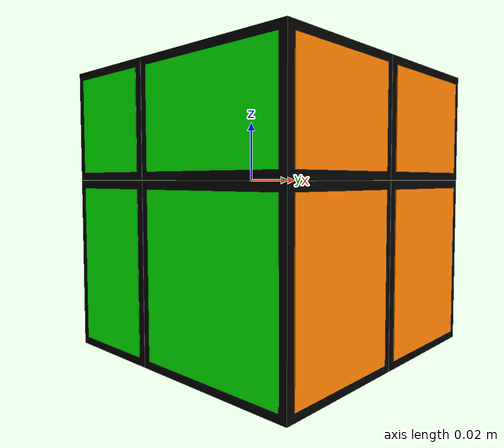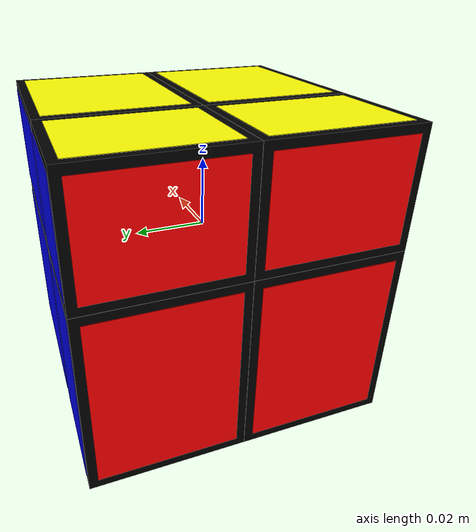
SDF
<?xml version="1.0" ?>
<sdf version="1.7">
	<model name="mirror_cube_2x2">
		<link name="center"/>
		<link name="cubie_0_0_0">
			<pose>-0.01755 -0.02255 -0.02755 0.0 0.0 0.0</pose>
			<inertial>
				<mass>0.033783749999999994</mass>
				<inertia>
					<ixx>1.4217328124999998e-05</ixx>
					<ixy>0.0</ixy>
					<ixz>0.0</ixz>
					<iyy>1.1965078124999998e-05</iyy>
					<iyz>0.0</iyz>
					<izz>9.149765624999997e-06</izz>
				</inertia>
			</inertial>
			<collision name="collision">
				<geometry>
					<box>
						<size>0.034999999999999996 0.045 0.055</size>
					</box>
				</geometry>
				<surface>
					<friction>
						<ode>
							<mu>0.6</mu>
							<mu2>0.6</mu2>
						</ode>
					</friction>
				</surface>
			</collision>
			<visual name="black">
				<geometry>
					<box>
						<size>0.034999999999999996 0.045 0.055</size>
					</box>
				</geometry>
				<material>
					<diffuse>0 0 0 1</diffuse>
				</material>
			</visual>
			<visual name="red">
				<pose>-0.017499999999999998 0.0 0.0 0.0 0.0 0.0</pose>
				<geometry>
					<box>
						<size>0.0003 0.04 0.05</size>
					</box>
				</geometry>
				<material>
					<diffuse>1 0 0 1</diffuse>
				</material>
			</visual>
			<visual name="green">
				<pose>0.0 -0.0225 0.0 0.0 0.0 0.0</pose>
				<geometry>
					<box>
						<size>0.03 0.0004 0.05</size>
					</box>
				</geometry>
				<material>
					<diffuse>0 1 0 1</diffuse>
				</material>
			</visual>
			<visual name="white">
				<pose>0.0 0.0 -0.0275 0.0 0.0 0.0</pose>
				<geometry>
					<box>
						<size>0.03 0.04 0.0005</size>
					</box>
				</geometry>
				<material>
					<diffuse>1 1 1 1</diffuse>
				</material>
			</visual>
		</link>
		<joint name="ball_0_0_0" type="ball">
			<pose>0.01755 0.02255 0.02755 -0.0 -0.0 -0.0</pose>
			<parent>center</parent>
			<child>cubie_0_0_0</child>
			<axis>
				<dynamics>
					<damping>0.1</damping>
				</dynamics>
				<limit>
					<effort>0</effort>
				</limit>
			</axis>
		</joint>
		<link name="cubie_0_0_1">
			<pose>-0.01755 -0.02255 0.01755 0.0 0.0 0.0</pose>
			<inertial>
				<mass>0.021498749999999994</mass>
				<inertia>
					<ixx>5.8225781249999976e-06</ixx>
					<ixy>0.0</ixy>
					<ixz>0.0</ixz>
					<iyy>4.389328124999998e-06</iyy>
					<iyz>0.0</iyz>
					<izz>5.8225781249999976e-06</izz>
				</inertia>
			</inertial>
			<collision name="collision">
				<geometry>
					<box>
						<size>0.034999999999999996 0.045 0.034999999999999996</size>
					</box>
				</geometry>
				<surface>
					<friction>
						<ode>
							<mu>0.6</mu>
							<mu2>0.6</mu2>
						</ode>
					</friction>
				</surface>
			</collision>
			<visual name="black">
				<geometry>
					<box>
						<size>0.034999999999999996 0.045 0.034999999999999996</size>
					</box>
				</geometry>
				<material>
					<diffuse>0 0 0 1</diffuse>
				</material>
			</visual>
			<visual name="red">
				<pose>-0.017499999999999998 0.0 0.0 0.0 0.0 0.0</pose>
				<geometry>
					<box>
						<size>0.0003 0.04 0.03</size>
					</box>
				</geometry>
				<material>
					<diffuse>1 0 0 1</diffuse>
				</material>
			</visual>
			<visual name="green">
				<pose>0.0 -0.0225 0.0 0.0 0.0 0.0</pose>
				<geometry>
					<box>
						<size>0.03 0.0004 0.03</size>
					</box>
				</geometry>
				<material>
					<diffuse>0 1 0 1</diffuse>
				</material>
			</visual>
			<visual name="yellow">
				<pose>0.0 0.0 0.017499999999999998 0.0 0.0 0.0</pose>
				<geometry>
					<box>
						<size>0.03 0.04 0.0003</size>
					</box>
				</geometry>
				<material>
					<diffuse>1 1 0 1</diffuse>
				</material>
			</visual>
		</link>
		<joint name="ball_0_0_1" type="ball">
			<pose>0.01755 0.02255 -0.01755 -0.0 -0.0 -0.0</pose>
			<parent>center</parent>
			<child>cubie_0_0_1</child>
			<axis>
				<dynamics>
					<damping>0.1</damping>
				</dynamics>
				<limit>
					<effort>0</effort>
				</limit>
			</axis>
		</joint>
		<link name="cubie_0_1_0">
			<pose>-0.01755 0.02255 -0.02755 0.0 0.0 0.0</pose>
			<inertial>
				<mass>0.033783749999999994</mass>
				<inertia>
					<ixx>1.4217328124999998e-05</ixx>
					<ixy>0.0</ixy>
					<ixz>0.0</ixz>
					<iyy>1.1965078124999998e-05</iyy>
					<iyz>0.0</iyz>
					<izz>9.149765624999997e-06</izz>
				</inertia>
			</inertial>
			<collision name="collision">
				<geometry>
					<box>
						<size>0.034999999999999996 0.045 0.055</size>
					</box>
				</geometry>
				<surface>
					<friction>
						<ode>
							<mu>0.6</mu>
							<mu2>0.6</mu2>
						</ode>
					</friction>
				</surface>
			</collision>
			<visual name="black">
				<geometry>
					<box>
						<size>0.034999999999999996 0.045 0.055</size>
					</box>
				</geometry>
				<material>
					<diffuse>0 0 0 1</diffuse>
				</material>
			</visual>
			<visual name="red">
				<pose>-0.017499999999999998 0.0 0.0 0.0 0.0 0.0</pose>
				<geometry>
					<box>
						<size>0.0003 0.04 0.05</size>
					</box>
				</geometry>
				<material>
					<diffuse>1 0 0 1</diffuse>
				</material>
			</visual>
			<visual name="blue">
				<pose>0.0 0.0225 0.0 0.0 0.0 0.0</pose>
				<geometry>
					<box>
						<size>0.03 0.0004 0.05</size>
					</box>
				</geometry>
				<material>
					<diffuse>0 0 1 1</diffuse>
				</material>
			</visual>
			<visual name="white">
				<pose>0.0 0.0 -0.0275 0.0 0.0 0.0</pose>
				<geometry>
					<box>
						<size>0.03 0.04 0.0005</size>
					</box>
				</geometry>
				<material>
					<diffuse>1 1 1 1</diffuse>
				</material>
			</visual>
		</link>
		<joint name="ball_0_1_0" type="ball">
			<pose>0.01755 -0.02255 0.02755 -0.0 -0.0 -0.0</pose>
			<parent>center</parent>
			<child>cubie_0_1_0</child>
			<axis>
				<dynamics>
					<damping>0.1</damping>
				</dynamics>
				<limit>
					<effort>0</effort>
				</limit>
			</axis>
		</joint>
		<link name="cubie_0_1_1">
			<pose>-0.01755 0.02255 0.01755 0.0 0.0 0.0</pose>
			<inertial>
				<mass>0.021498749999999994</mass>
				<inertia>
					<ixx>5.8225781249999976e-06</ixx>
					<ixy>0.0</ixy>
					<ixz>0.0</ixz>
					<iyy>4.389328124999998e-06</iyy>
					<iyz>0.0</iyz>
					<izz>5.8225781249999976e-06</izz>
				</inertia>
			</inertial>
			<collision name="collision">
				<geometry>
					<box>
						<size>0.034999999999999996 0.045 0.034999999999999996</size>
					</box>
				</geometry>
				<surface>
					<friction>
						<ode>
							<mu>0.6</mu>
							<mu2>0.6</mu2>
						</ode>
					</friction>
				</surface>
			</collision>
			<visual name="black">
				<geometry>
					<box>
						<size>0.034999999999999996 0.045 0.034999999999999996</size>
					</box>
				</geometry>
				<material>
					<diffuse>0 0 0 1</diffuse>
				</material>
			</visual>
			<visual name="red">
				<pose>-0.017499999999999998 0.0 0.0 0.0 0.0 0.0</pose>
				<geometry>
					<box>
						<size>0.0003 0.04 0.03</size>
					</box>
				</geometry>
				<material>
					<diffuse>1 0 0 1</diffuse>
				</material>
			</visual>
			<visual name="blue">
				<pose>0.0 0.0225 0.0 0.0 0.0 0.0</pose>
				<geometry>
					<box>
						<size>0.03 0.0004 0.03</size>
					</box>
				</geometry>
				<material>
					<diffuse>0 0 1 1</diffuse>
				</material>
			</visual>
			<visual name="yellow">
				<pose>0.0 0.0 0.017499999999999998 0.0 0.0 0.0</pose>
				<geometry>
					<box>
						<size>0.03 0.04 0.0003</size>
					</box>
				</geometry>
				<material>
					<diffuse>1 1 0 1</diffuse>
				</material>
			</visual>
		</link>
		<joint name="ball_0_1_1" type="ball">
			<pose>0.01755 -0.02255 -0.01755 -0.0 -0.0 -0.0</pose>
			<parent>center</parent>
			<child>cubie_0_1_1</child>
			<axis>
				<dynamics>
					<damping>0.1</damping>
				</dynamics>
				<limit>
					<effort>0</effort>
				</limit>
			</axis>
		</joint>
		<link name="cubie_1_0_0">
			<pose>0.02755 -0.02255 -0.02755 0.0 0.0 0.0</pose>
			<inertial>
				<mass>0.05308875</mass>
				<inertia>
					<ixx>2.2341515624999998e-05</ixx>
					<ixy>0.0</ixy>
					<ixz>0.0</ixz>
					<iyy>2.6765578125e-05</iyy>
					<iyz>0.0</iyz>
					<izz>2.2341515624999998e-05</izz>
				</inertia>
			</inertial>
			<collision name="collision">
				<geometry>
					<box>
						<size>0.055 0.045 0.055</size>
					</box>
				</geometry>
				<surface>
					<friction>
						<ode>
							<mu>0.6</mu>
							<mu2>0.6</mu2>
						</ode>
					</friction>
				</surface>
			</collision>
			<visual name="black">
				<geometry>
					<box>
						<size>0.055 0.045 0.055</size>
					</box>
				</geometry>
				<material>
					<diffuse>0 0 0 1</diffuse>
				</material>
			</visual>
			<visual name="orange">
				<pose>0.0275 0.0 0.0 0.0 0.0 0.0</pose>
				<geometry>
					<box>
						<size>0.0005 0.04 0.05</size>
					</box>
				</geometry>
				<material>
					<diffuse>1.0 0.5 0.0 1.0</diffuse>
				</material>
			</visual>
			<visual name="green">
				<pose>0.0 -0.0225 0.0 0.0 0.0 0.0</pose>
				<geometry>
					<box>
						<size>0.05 0.0004 0.05</size>
					</box>
				</geometry>
				<material>
					<diffuse>0 1 0 1</diffuse>
				</material>
			</visual>
			<visual name="white">
				<pose>0.0 0.0 -0.0275 0.0 0.0 0.0</pose>
				<geometry>
					<box>
						<size>0.05 0.04 0.0005</size>
					</box>
				</geometry>
				<material>
					<diffuse>1 1 1 1</diffuse>
				</material>
			</visual>
		</link>
		<joint name="ball_1_0_0" type="ball">
			<pose>-0.02755 0.02255 0.02755 -0.0 -0.0 -0.0</pose>
			<parent>center</parent>
			<child>cubie_1_0_0</child>
			<axis>
				<dynamics>
					<damping>0.1</damping>
				</dynamics>
				<limit>
					<effort>0</effort>
				</limit>
			</axis>
		</joint>
		<link name="cubie_1_0_1">
			<pose>0.02755 -0.02255 0.01755 0.0 0.0 0.0</pose>
			<inertial>
				<mass>0.033783749999999994</mass>
				<inertia>
					<ixx>9.149765624999997e-06</ixx>
					<ixy>0.0</ixy>
					<ixz>0.0</ixz>
					<iyy>1.1965078124999998e-05</iyy>
					<iyz>0.0</iyz>
					<izz>1.4217328124999998e-05</izz>
				</inertia>
			</inertial>
			<collision name="collision">
				<geometry>
					<box>
						<size>0.055 0.045 0.034999999999999996</size>
					</box>
				</geometry>
				<surface>
					<friction>
						<ode>
							<mu>0.6</mu>
							<mu2>0.6</mu2>
						</ode>
					</friction>
				</surface>
			</collision>
			<visual name="black">
				<geometry>
					<box>
						<size>0.055 0.045 0.034999999999999996</size>
					</box>
				</geometry>
				<material>
					<diffuse>0 0 0 1</diffuse>
				</material>
			</visual>
			<visual name="orange">
				<pose>0.0275 0.0 0.0 0.0 0.0 0.0</pose>
				<geometry>
					<box>
						<size>0.0005 0.04 0.03</size>
					</box>
				</geometry>
				<material>
					<diffuse>1.0 0.5 0.0 1.0</diffuse>
				</material>
			</visual>
			<visual name="green">
				<pose>0.0 -0.0225 0.0 0.0 0.0 0.0</pose>
				<geometry>
					<box>
						<size>0.05 0.0004 0.03</size>
					</box>
				</geometry>
				<material>
					<diffuse>0 1 0 1</diffuse>
				</material>
			</visual>
			<visual name="yellow">
				<pose>0.0 0.0 0.017499999999999998 0.0 0.0 0.0</pose>
				<geometry>
					<box>
						<size>0.05 0.04 0.0003</size>
					</box>
				</geometry>
				<material>
					<diffuse>1 1 0 1</diffuse>
				</material>
			</visual>
		</link>
		<joint name="ball_1_0_1" type="ball">
			<pose>-0.02755 0.02255 -0.01755 -0.0 -0.0 -0.0</pose>
			<parent>center</parent>
			<child>cubie_1_0_1</child>
			<axis>
				<dynamics>
					<damping>0.1</damping>
				</dynamics>
				<limit>
					<effort>0</effort>
				</limit>
			</axis>
		</joint>
		<link name="cubie_1_1_0">
			<pose>0.02755 0.02255 -0.02755 0.0 0.0 0.0</pose>
			<inertial>
				<mass>0.05308875</mass>
				<inertia>
					<ixx>2.2341515624999998e-05</ixx>
					<ixy>0.0</ixy>
					<ixz>0.0</ixz>
					<iyy>2.6765578125e-05</iyy>
					<iyz>0.0</iyz>
					<izz>2.2341515624999998e-05</izz>
				</inertia>
			</inertial>
			<collision name="collision">
				<geometry>
					<box>
						<size>0.055 0.045 0.055</size>
					</box>
				</geometry>
				<surface>
					<friction>
						<ode>
							<mu>0.6</mu>
							<mu2>0.6</mu2>
						</ode>
					</friction>
				</surface>
			</collision>
			<visual name="black">
				<geometry>
					<box>
						<size>0.055 0.045 0.055</size>
					</box>
				</geometry>
				<material>
					<diffuse>0 0 0 1</diffuse>
				</material>
			</visual>
			<visual name="orange">
				<pose>0.0275 0.0 0.0 0.0 0.0 0.0</pose>
				<geometry>
					<box>
						<size>0.0005 0.04 0.05</size>
					</box>
				</geometry>
				<material>
					<diffuse>1.0 0.5 0.0 1.0</diffuse>
				</material>
			</visual>
			<visual name="blue">
				<pose>0.0 0.0225 0.0 0.0 0.0 0.0</pose>
				<geometry>
					<box>
						<size>0.05 0.0004 0.05</size>
					</box>
				</geometry>
				<material>
					<diffuse>0 0 1 1</diffuse>
				</material>
			</visual>
			<visual name="white">
				<pose>0.0 0.0 -0.0275 0.0 0.0 0.0</pose>
				<geometry>
					<box>
						<size>0.05 0.04 0.0005</size>
					</box>
				</geometry>
				<material>
					<diffuse>1 1 1 1</diffuse>
				</material>
			</visual>
		</link>
		<joint name="ball_1_1_0" type="ball">
			<pose>-0.02755 -0.02255 0.02755 -0.0 -0.0 -0.0</pose>
			<parent>center</parent>
			<child>cubie_1_1_0</child>
			<axis>
				<dynamics>
					<damping>0.1</damping>
				</dynamics>
				<limit>
					<effort>0</effort>
				</limit>
			</axis>
		</joint>
		<link name="cubie_1_1_1">
			<pose>0.02755 0.02255 0.01755 0.0 0.0 0.0</pose>
			<inertial>
				<mass>0.033783749999999994</mass>
				<inertia>
					<ixx>9.149765624999997e-06</ixx>
					<ixy>0.0</ixy>
					<ixz>0.0</ixz>
					<iyy>1.1965078124999998e-05</iyy>
					<iyz>0.0</iyz>
					<izz>1.4217328124999998e-05</izz>
				</inertia>
			</inertial>
			<collision name="collision">
				<geometry>
					<box>
						<size>0.055 0.045 0.034999999999999996</size>
					</box>
				</geometry>
				<surface>
					<friction>
						<ode>
							<mu>0.6</mu>
							<mu2>0.6</mu2>
						</ode>
					</friction>
				</surface>
			</collision>
			<visual name="black">
				<geometry>
					<box>
						<size>0.055 0.045 0.034999999999999996</size>
					</box>
				</geometry>
				<material>
					<diffuse>0 0 0 1</diffuse>
				</material>
			</visual>
			<visual name="orange">
				<pose>0.0275 0.0 0.0 0.0 0.0 0.0</pose>
				<geometry>
					<box>
						<size>0.0005 0.04 0.03</size>
					</box>
				</geometry>
				<material>
					<diffuse>1.0 0.5 0.0 1.0</diffuse>
				</material>
			</visual>
			<visual name="blue">
				<pose>0.0 0.0225 0.0 0.0 0.0 0.0</pose>
				<geometry>
					<box>
						<size>0.05 0.0004 0.03</size>
					</box>
				</geometry>
				<material>
					<diffuse>0 0 1 1</diffuse>
				</material>
			</visual>
			<visual name="yellow">
				<pose>0.0 0.0 0.017499999999999998 0.0 0.0 0.0</pose>
				<geometry>
					<box>
						<size>0.05 0.04 0.0003</size>
					</box>
				</geometry>
				<material>
					<diffuse>1 1 0 1</diffuse>
				</material>
			</visual>
		</link>
		<joint name="ball_1_1_1" type="ball">
			<pose>-0.02755 -0.02255 -0.01755 -0.0 -0.0 -0.0</pose>
			<parent>center</parent>
			<child>cubie_1_1_1</child>
			<axis>
				<dynamics>
					<damping>0.1</damping>
				</dynamics>
				<limit>
					<effort>0</effort>
				</limit>
			</axis>
		</joint>
	</model>
</sdf>
